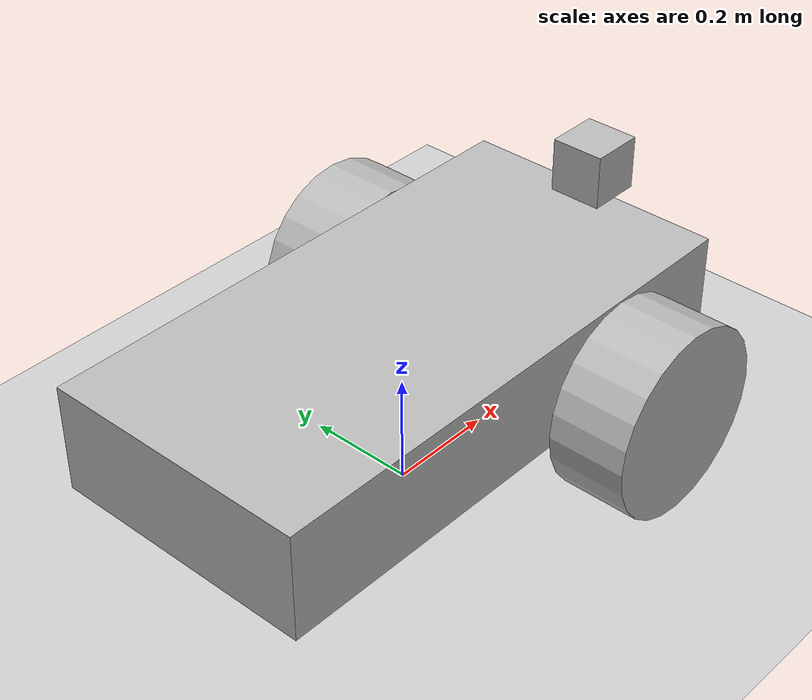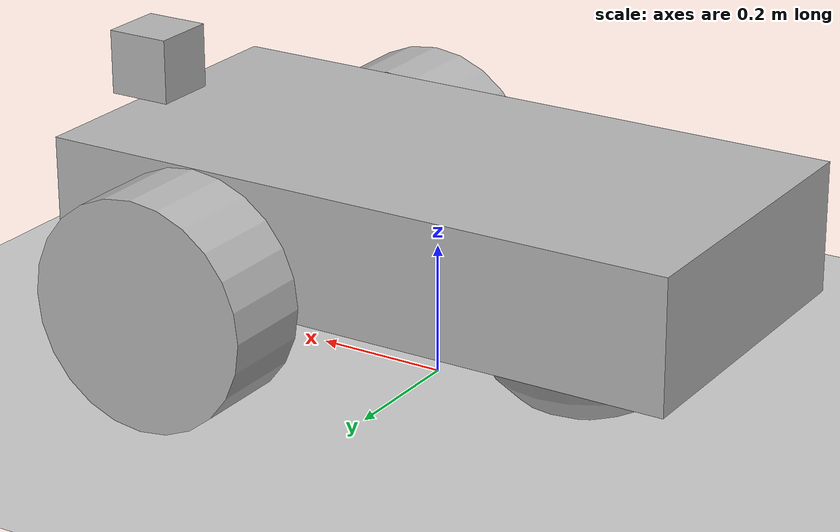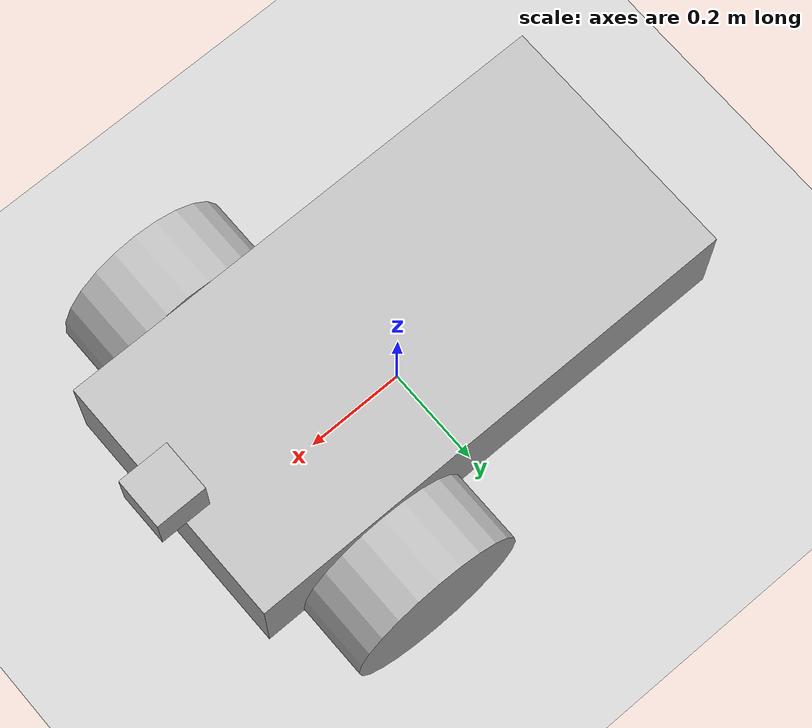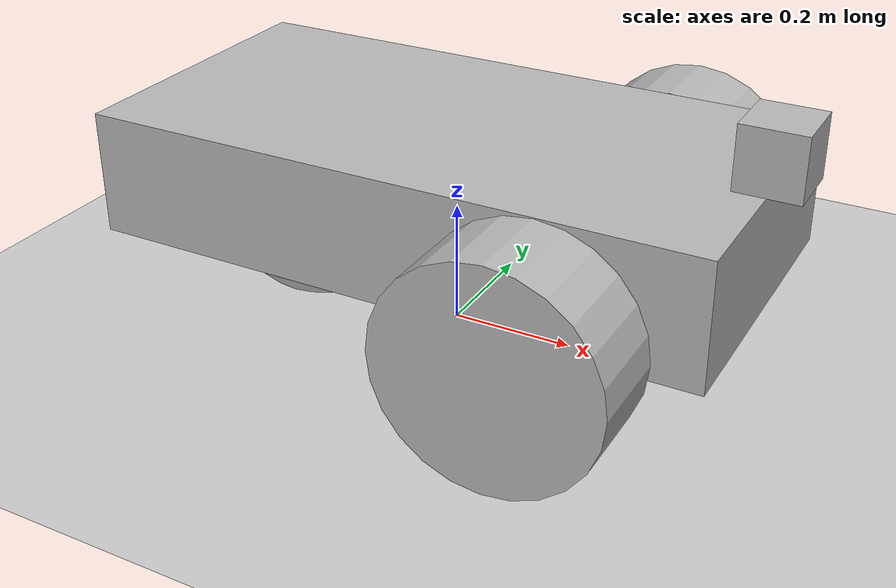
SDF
<?xml version="1.0"?>
<sdf version="1.6">
    <world name="collision_world">

        <include>
            <uri>model://ground_plane</uri>
        </include>

        <include>
            <uri>model://sun</uri>
        </include>

        <model name='collision_model'>
        <static>false</static>
            <link name='chassis'>
                <pose>0 0 .25 0 0 0</pose>

                <visual name='chassis_visual'>
                    <pose>0 0 0 0 -0 0</pose>
                    <geometry>
                        <box>
                            <size>1 0.5 0.2</size>
                        </box>
                    </geometry>
                </visual>

                <collision name='chassis_collision'>
                    <pose>0 0 0 0 -0 0</pose>
                    <geometry>
                        <box>
                            <size>1 0.5 0.2</size>
                        </box>
                    </geometry>
                </collision>
            </link>

            <link name='left_wheel'>
                <pose>0.25 0.325 0.175 1.5707 0 0</pose>

                <visual name='left_wheel_visual'>
                    <pose>0 0 0 0 -0 0</pose>
                    <geometry>
                        <cylinder>
                            <radius>0.175</radius>
                            <length>0.145</length>
                        </cylinder>
                    </geometry>
                </visual>

                <collision name='left_wheel_collision'>
                    <pose>0 0 0 0 -0 0</pose>
                    <geometry>
                        <cylinder>
                            <radius>0.175</radius>
                            <length>0.145</length>
                        </cylinder>
                    </geometry>
                </collision>
            </link>

            <link name='right_wheel'>
                <pose>0.25 -0.325 0.175 1.5707 0 0</pose>

                <visual name='right_wheel_visual'>
                    <pose>0 0 0 0 -0 0</pose>
                    <geometry>
                        <cylinder>
                            <radius>0.175</radius>
                            <length>0.145</length>
                        </cylinder>
                    </geometry>
                </visual>

                <collision name='right_wheel_collision'>
                    <pose>0 0 0 0 -0 0</pose>
                    <geometry>
                        <cylinder>
                            <radius>0.175</radius>
                            <length>0.145</length>
                        </cylinder>
                    </geometry>
                </collision>
            </link>

            <link name='central_wheel'>
                <pose>-0.25 0 0.175 0 0 0</pose>

                <visual name='central_wheel_visual'>
                    <pose>0 0 0 0 -0 0</pose>
                    <geometry>
                        <sphere>
                            <radius>0.175</radius>
                        </sphere>
                    </geometry>
                </visual>

                <collision name='central_wheel_collision'>
                    <pose>0 0 0 0 -0 0</pose>
                    <geometry>
                        <sphere>
                            <radius>0.175</radius>
                        </sphere>
                    </geometry>
                </collision>
            </link>

            <model name='sensor_box'>
                <link name='sensor_link'>
                    <pose>0.5 0 0.4 0 -0 0</pose>

                    <collision name="sensor_box_collision">
                        <geometry>
                        <box>
                            <size>0.1 0.1 0.1</size>
                        </box>
                        </geometry>
                    </collision>

                    <visual name="sensor_box_visual">
                        <geometry>
                        <box>
                            <size>0.1 0.1 0.1</size>
                        </box>
                        </geometry>
                    </visual>

                    <sensor name='my_contact' type='contact'>
                        <plugin name="myCollisionSensorPlugin" filename="libmyCollisionSensorPlugin.so"/>
                        <contact>
                        <collision>sensor_box_collision</collision>
                        </contact>
                    </sensor>
                </link>
            </model>

            <joint type='revolute' name='left_wheel_hinge'>
                <pose>0 0 0 0 0 0</pose>
                <child>left_wheel</child>
                <parent>chassis</parent>
                <axis>
                    <xyz>0 0 1</xyz>
                </axis>
            </joint>

            <joint type='revolute' name='right_wheel_hinge'>
                <pose>0 0 0 0 0 0</pose>
                <child>right_wheel</child>
                <parent>chassis</parent>
                <axis>
                    <xyz>0 0 1</xyz>
                </axis>
            </joint>

            <joint type='ball' name='central_wheel_hinge'>
                <pose>0 0 0 0 0 0</pose>
                <child>central_wheel</child>
                <parent>chassis</parent>
            </joint>

            <joint type='fixed' name='collision_sensor_joint'>
                <pose>0 0 0 0 0 0</pose>
                <child>sensor_box::sensor_link</child>
                <parent>chassis</parent>
            </joint>

            <plugin name="myCollisionModelPlugin" filename="libmyCollisionModelPlugin.so"/>
        </model>

    </world>
</sdf>
